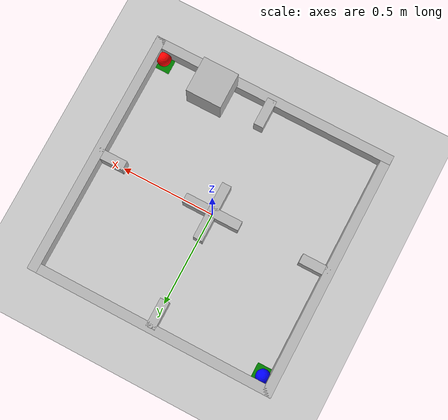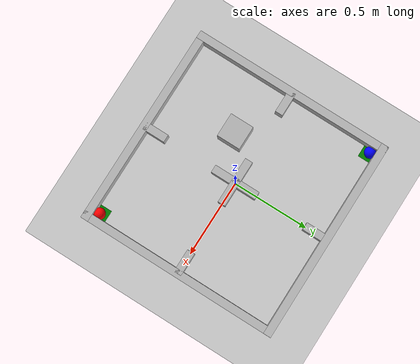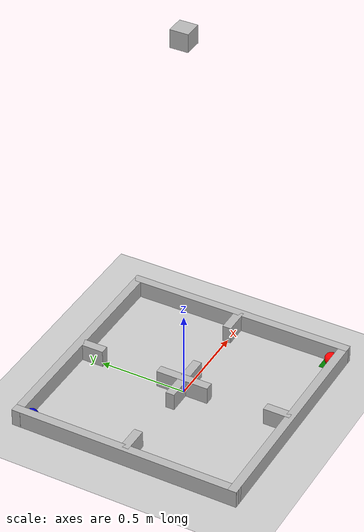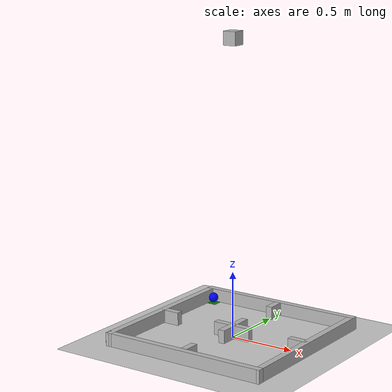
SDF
<sdf version="1.6">
 <world name="default">
  <light name="sun" type="directional">
   <pose>0 0 10 0 -0 0</pose>
   <diffuse>0.8 0.8 0.8 1</diffuse>
   <specular>0.2 0.2 0.2 1</specular>
   <attenuation>
    <range>1000</range>
    <constant>0.9</constant>
    <linear>0.01</linear>
    <quadratic>0.001</quadratic>
   </attenuation>
   <direction>-0.5 0.1 -0.9</direction>
  </light>
  <model name="ground_plane">
   <static>1</static>
   <link name="link">
    <collision name="collision">
     <geometry><plane><normal>0 0 1</normal><size>100 100</size></plane></geometry>
     <surface>
      <contact><collide_bitmask>65535</collide_bitmask></contact>
      <friction><ode><mu>100</mu><mu2>50</mu2></ode></friction>
     </surface>
    </collision>
    <visual name="visual">
     <cast_shadows>0</cast_shadows>
     <geometry><plane><normal>0 0 1</normal><size>100 100</size></plane></geometry>
     <material>
      <script><uri>file://media/materials/scripts/gazebo.material</uri><name>Gazebo/Grey</name></script>
     </material>
    </visual>
   </link>
  </model>
  <gravity>0 0 -9.8</gravity>
  <magnetic_field>6e-06 2.3e-05 -4.2e-05</magnetic_field>
  <atmosphere type="adiabatic"/>
  <physics name="default_physics" default="0" type="ode">
   <max_step_size>0.016</max_step_size>
   <real_time_factor>1</real_time_factor>
   <real_time_update_rate>10000</real_time_update_rate>
  </physics>
  <scene><ambient>0.4 0.4 0.4 1</ambient><background>0.7 0.7 0.7 1</background><shadows>1</shadows></scene>
  <spherical_coordinates>
   <surface_model>EARTH_WGS84</surface_model>
   <latitude_deg>0</latitude_deg>
   <longitude_deg>0</longitude_deg>
   <elevation>0</elevation>
   <heading_deg>0</heading_deg>
  </spherical_coordinates>
  <model name="red_base">
   <link name="link">
    <pose>0.585 -0.585 0.0005 0 -0 0</pose>
    <inertial>
     <mass>0.000524852</mass>
     <inertia>
      <ixx>2.39529e-06</ixx>
      <ixy>0</ixy>
      <ixz>0</ixz>
      <iyy>2.39529e-06</iyy>
      <iyz>0</iyz>
      <izz>4.78604e-06</izz>
     </inertia>
    </inertial>
    <visual name="visual">
     <geometry><box><size>0.1 0.1 0.001</size></box></geometry>
     <material>
      <script><name>Gazebo/Grey</name><uri>file://media/materials/scripts/gazebo.material</uri></script>
      <ambient>0 0.5 0 1</ambient>
      <diffuse>0 0.5 0 1</diffuse>
      <specular>0.01 0.01 0.01 1</specular>
      <emissive>0 0 0 1</emissive>
     </material>
    </visual>
    <collision name="collision"><geometry><box><size>0.1 0.1 0.001</size></box></geometry></collision>
   </link>
   <static>1</static>
  </model>
  <model name="blue_base">
   <link name="link">
    <pose>-0.585 0.585 0.0005 0 -0 0</pose>
    <inertial>
     <mass>0.000524852</mass>
     <inertia>
      <ixx>2.39529e-06</ixx>
      <ixy>0</ixy>
      <ixz>0</ixz>
      <iyy>2.39529e-06</iyy>
      <iyz>0</iyz>
      <izz>4.78604e-06</izz>
     </inertia>
    </inertial>
    <visual name="visual">
     <geometry><box><size>0.1 0.1 0.001</size></box></geometry>
     <material>
      <script><name>Gazebo/Grey</name><uri>file://media/materials/scripts/gazebo.material</uri></script>
      <ambient>0 0.5 0 1</ambient>
      <diffuse>0 0.5 0 1</diffuse>
      <specular>0.01 0.01 0.01 1</specular>
      <emissive>0 0 0 1</emissive>
     </material>
    </visual>
    <collision name="collision"><geometry><box><size>0.1 0.1 0.001</size></box></geometry></collision>
   </link>
   <static>1</static>
  </model>
  <model name="sphere_arena">
   <static>1</static>
   <link name="south_wall">
    <pose>0 -0.635 0.05 0 -0 0</pose>
    <collision name="collision"><geometry><box><size>1.32 0.05 0.1</size></box></geometry></collision>
    <visual name="visual"><geometry><box><size>1.32 0.05 0.1</size></box></geometry></visual>
   </link>
   <link name="north_wall">
    <pose>0 0.635 0.05 0 -0 0</pose>
    <collision name="collision"><geometry><box><size>1.32 0.05 0.1</size></box></geometry></collision>
    <visual name="visual"><geometry><box><size>1.32 0.05 0.1</size></box></geometry></visual>
   </link>
   <link name="west_wall">
    <pose>-0.635 0 0.05 0 -0 1.57</pose>
    <collision name="collision"><geometry><box><size>1.32 0.05 0.1</size></box></geometry></collision>
    <visual name="visual"><geometry><box><size>1.32 0.05 0.1</size></box></geometry></visual>
   </link>
   <link name="east_wall">
    <pose>0.635 0 0.05 0 -0 1.57</pose>
    <collision name="collision"><geometry><box><size>1.32 0.05 0.1</size></box></geometry></collision>
    <visual name="visual"><geometry><box><size>1.32 0.05 0.1</size></box></geometry></visual>
   </link>
   <link name="center_barrier_1">
    <pose>0.0 0 0.05 0 -0 1.57</pose>
    <collision name="collision"><geometry><box><size>0.305 0.05 0.1</size></box></geometry></collision>
    <visual name="visual"><geometry><box><size>0.305 0.05 0.1</size></box></geometry></visual>
   </link>
   <link name="center_barrier_3">
    <pose>0.0 0.56 0.05 0 -0 1.57</pose>
    <collision name="collision"><geometry><box><size>0.15 0.05 0.1</size></box></geometry></collision>
    <visual name="visual"><geometry><box><size>0.15 0.05 0.1</size></box></geometry></visual>
   </link>
   <link name="center_barrier_4">
    <pose>0.0 -0.56 0.05 0 -0 1.57</pose>
    <collision name="collision"><geometry><box><size>0.15 0.05 0.1</size></box></geometry></collision>
    <visual name="visual"><geometry><box><size>0.15 0.05 0.1</size></box></geometry></visual>
   </link>
   <link name="center_barrier_2">
    <pose>0.0 0 0.05 0 -0 0</pose>
    <collision name="collision"><geometry><box><size>0.305 0.05 0.1</size></box></geometry></collision>
    <visual name="visual"><geometry><box><size>0.305 0.05 0.1</size></box></geometry></visual>
   </link>
   <link name="center_barrier_5">
    <pose>0.56 0 0.05 0 -0 0</pose>
    <collision name="collision"><geometry><box><size>0.15 0.05 0.1</size></box></geometry></collision>
    <visual name="visual"><geometry><box><size>0.15 0.05 0.1</size></box></geometry></visual>
   </link>
   <link name="center_barrier_6">
    <pose>-0.56 0 0.05 0 -0 0</pose>
    <collision name="collision"><geometry><box><size>0.15 0.05 0.1</size></box></geometry></collision>
    <visual name="visual"><geometry><box><size>0.15 0.05 0.1</size></box></geometry></visual>
   </link>
  </model>
  <model name="blue_sphero">
   <static>0</static>
   <link name="sphere">
    <collision name="sphere_collision">
     <geometry><sphere><radius>0.0375</radius></sphere></geometry>
     <surface>
      <friction><ode><mu>0.1</mu><mu2>0.1</mu2><slip1>0.1</slip1><slip2>0.1</slip2></ode></friction>
     </surface>
    </collision>
    <visual name="sphere_visual">
     <geometry><sphere><radius>0.0375</radius></sphere></geometry>
     <material>
      <ambient>0 0 1 1</ambient>
      <diffuse>0 0 1 1</diffuse>
      <specular>0.1 0.1 0.1 1</specular>
      <emissive>0 0 0 0</emissive>
     </material>
    </visual>
    <inertial>
     <inertia><ixx>1</ixx><ixy>0</ixy><ixz>0</ixz><iyy>1</iyy><iyz>0</iyz><izz>1</izz></inertia>
     <mass>1</mass>
    </inertial>
   </link>
   <pose>-0.585 0.585 0.0375 0 -0 0</pose>
   <plugin name="sphere_drive" filename="libsphere_drive.so"/>
  </model>
  <model name="red_sphero">
   <static>0</static>
   <link name="sphere">
    <collision name="sphere_collision">
     <geometry><sphere><radius>0.0375</radius></sphere></geometry>
     <surface>
      <friction><ode><mu>0.1</mu><mu2>0.1</mu2><slip1>0.1</slip1><slip2>0.1</slip2></ode></friction>
     </surface>
    </collision>
    <visual name="sphere_visual">
     <geometry><sphere><radius>0.0375</radius></sphere></geometry>
     <material>
      <ambient>1 0 0 1</ambient>
      <diffuse>1 0 0 1</diffuse>
      <specular>0.1 0.1 0.1 1</specular>
      <emissive>0 0 0 0</emissive>
     </material>
    </visual>
    <inertial>
     <inertia><ixx>1</ixx><ixy>0</ixy><ixz>0</ixz><iyy>1</iyy><iyz>0</iyz><izz>1</izz></inertia>
     <mass>1</mass>
    </inertial>
   </link>
   <pose>0.585 -0.585 0.0375 0 -0 0</pose>
   <plugin name="sphere_drive" filename="libsphere_drive.so"/>
  </model>
  <model name="camera">
   <static>1</static>
   <pose>0 0 2.2 2.54213 1.57079 2.54213</pose>
   <link name="link">
    <inertial>
     <mass>0.1</mass>
     <inertia>
      <ixx>0.000166667</ixx>
      <iyy>0.000166667</iyy>
      <izz>0.000166667</izz>
      <ixy>0</ixy>
      <ixz>0</ixz>
      <iyz>0</iyz>
     </inertia>
    </inertial>
    <collision name="collision">
     <geometry><box><size>0.1 0.1 0.1</size></box></geometry>
     <surface><friction><ode><mu>0</mu><mu2>0</mu2><slip1>1</slip1><slip2>1</slip2></ode></friction></surface>
    </collision>
    <visual name="visual"><geometry><box><size>0.1 0.1 0.1</size></box></geometry></visual>
    <sensor name="camera1" type="camera">
     <always_on>1</always_on>
     <update_rate>4800</update_rate>
     <visualize>0</visualize>
     <camera name="__default__">
      <horizontal_fov>1.047</horizontal_fov>
      <image><width>1920</width><height>1080</height><format>R8G8B8</format></image>
      <clip><near>0.1</near><far>100</far></clip>
     </camera>
     <plugin name="camera_controller" filename="libgazebo_ros_camera.so">
      <alwaysOn>true</alwaysOn>
      <updateRate>4800.0</updateRate>
      <cameraName>camera</cameraName>
      <frameName>/camera_link</frameName>
      <imageTopicName>rgb/image_raw</imageTopicName>
      <cameraInfoTopicName>rgb/camera_info</cameraInfoTopicName>
      <hackBaseline>0.07</hackBaseline>
      <distortionK1>0.0</distortionK1>
      <distortionK2>0.0</distortionK2>
      <distortionK3>0.0</distortionK3>
      <distortionT1>0.0</distortionT1>
      <distortionT2>0.0</distortionT2>
      <CxPrime>0.0</CxPrime>
      <Cx>0.0</Cx>
      <Cy>0.0</Cy>
      <focalLength>0.0</focalLength>
     </plugin>
    </sensor>
   </link>
  </model>
 </world>
</sdf>
